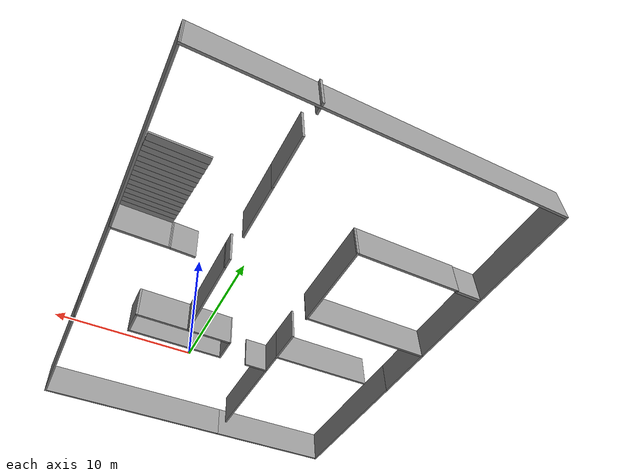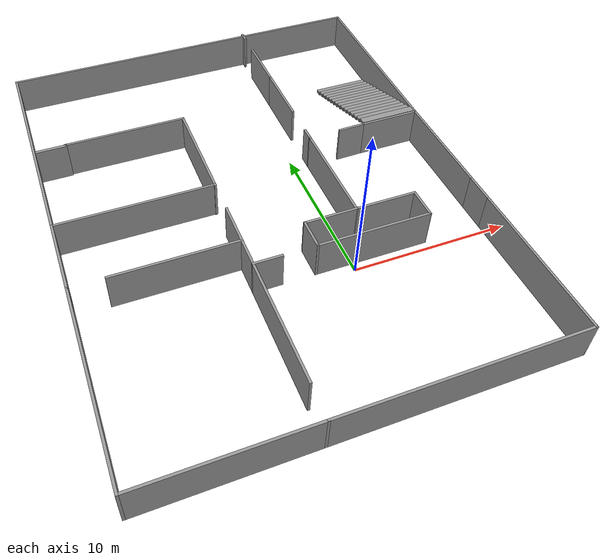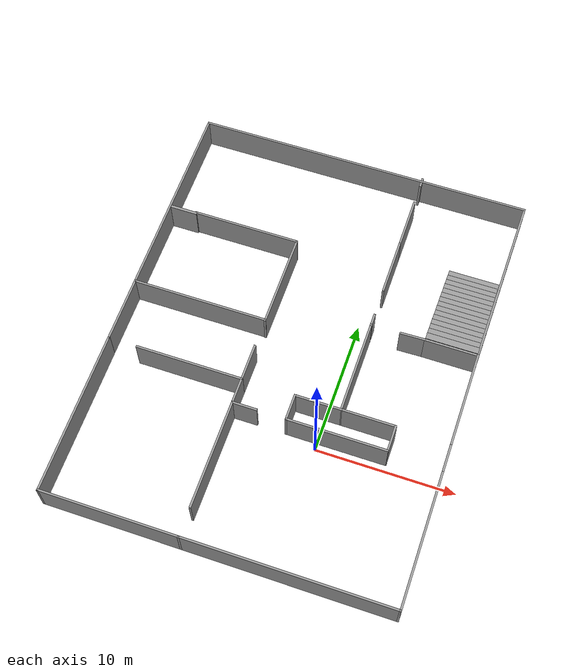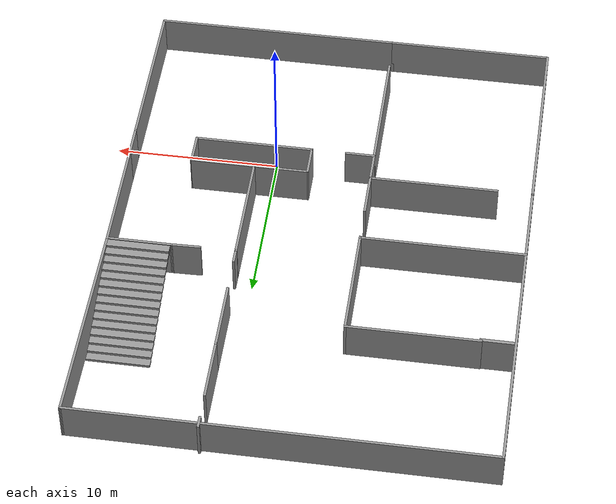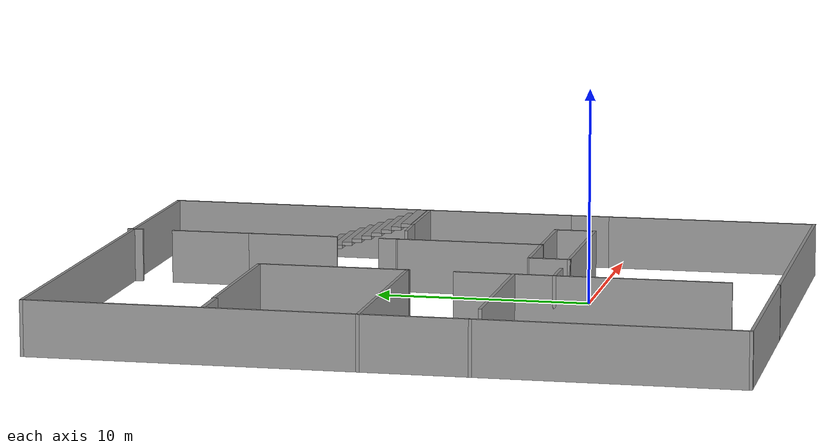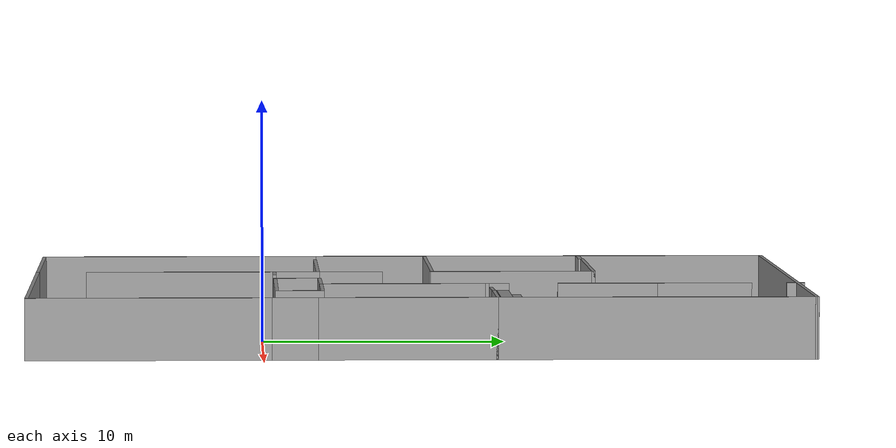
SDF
<?xml version='1.0'?>
<sdf version='1.6'>
  <model name='mybuilding'>
    <pose frame=''>-3.53637 6.43428 0 0 -0 0</pose>
    <link name='Door_0'>
      <collision name='Door_0_Collision'>
        <geometry>
          <box>
            <size>2.008 0.2 2.5</size>
          </box>
        </geometry>
        <pose frame=''>0 0 1.25 0 -0 0</pose>
      </collision>
      <visual name='Door_0_Visual'>
        <pose frame=''>0 0 1.25 0 -0 0</pose>
        <geometry>
          <box>
            <size>2.008 0.2 2.5</size>
          </box>
        </geometry>
        <material>
          <script>
            <uri>file://media/materials/scripts/gazebo.material</uri>
            <name>Gazebo/Grey</name>
          </script>
        </material>
      </visual>
      <pose frame=''>-11.3308 7.59577 0 0 -0 0</pose>
    </link>
    <link name='Stairs_5'>
      <visual name='Stairs_5_Visual_0'>
        <pose frame=''>10.3463 10.0552 0.083333 0 -0 0</pose>
        <geometry>
          <box>
            <size>3.78213 0.484429 0.166667</size>
          </box>
        </geometry>
        <material>
          <script>
            <uri>file://media/materials/scripts/gazebo.material</uri>
            <name>Gazebo/Grey</name>
          </script>
          <ambient>1 1 1 1</ambient>
        </material>
      </visual>
      <collision name='Stairs_5_Collision_0'>
        <geometry>
          <box>
            <size>3.78213 0.484429 0.166667</size>
          </box>
        </geometry>
        <pose frame=''>10.3463 10.0552 0.083333 0 -0 0</pose>
      </collision>
      <visual name='Stairs_5_Visual_1'>
        <pose frame=''>10.3463 9.57073 0.25 0 -0 0</pose>
        <geometry>
          <box>
            <size>3.78213 0.484429 0.166667</size>
          </box>
        </geometry>
        <material>
          <script>
            <uri>file://media/materials/scripts/gazebo.material</uri>
            <name>Gazebo/Grey</name>
          </script>
          <ambient>1 1 1 1</ambient>
        </material>
      </visual>
      <collision name='Stairs_5_Collision_1'>
        <geometry>
          <box>
            <size>3.78213 0.484429 0.166667</size>
          </box>
        </geometry>
        <pose frame=''>10.3463 9.57073 0.25 0 -0 0</pose>
      </collision>
      <visual name='Stairs_5_Visual_2'>
        <pose frame=''>10.3463 9.0863 0.416667 0 -0 0</pose>
        <geometry>
          <box>
            <size>3.78213 0.484429 0.166667</size>
          </box>
        </geometry>
        <material>
          <script>
            <uri>file://media/materials/scripts/gazebo.material</uri>
            <name>Gazebo/Grey</name>
          </script>
          <ambient>1 1 1 1</ambient>
        </material>
      </visual>
      <collision name='Stairs_5_Collision_2'>
        <geometry>
          <box>
            <size>3.78213 0.484429 0.166667</size>
          </box>
        </geometry>
        <pose frame=''>10.3463 9.0863 0.416667 0 -0 0</pose>
      </collision>
      <visual name='Stairs_5_Visual_3'>
        <pose frame=''>10.3463 8.60187 0.583333 0 -0 0</pose>
        <geometry>
          <box>
            <size>3.78213 0.484429 0.166667</size>
          </box>
        </geometry>
        <material>
          <script>
            <uri>file://media/materials/scripts/gazebo.material</uri>
            <name>Gazebo/Grey</name>
          </script>
          <ambient>1 1 1 1</ambient>
        </material>
      </visual>
      <collision name='Stairs_5_Collision_3'>
        <geometry>
          <box>
            <size>3.78213 0.484429 0.166667</size>
          </box>
        </geometry>
        <pose frame=''>10.3463 8.60187 0.583333 0 -0 0</pose>
      </collision>
      <visual name='Stairs_5_Visual_4'>
        <pose frame=''>10.3463 8.11744 0.75 0 -0 0</pose>
        <geometry>
          <box>
            <size>3.78213 0.484429 0.166667</size>
          </box>
        </geometry>
        <material>
          <script>
            <uri>file://media/materials/scripts/gazebo.material</uri>
            <name>Gazebo/Grey</name>
          </script>
          <ambient>1 1 1 1</ambient>
        </material>
      </visual>
      <collision name='Stairs_5_Collision_4'>
        <geometry>
          <box>
            <size>3.78213 0.484429 0.166667</size>
          </box>
        </geometry>
        <pose frame=''>10.3463 8.11744 0.75 0 -0 0</pose>
      </collision>
      <visual name='Stairs_5_Visual_5'>
        <pose frame=''>10.3463 7.63301 0.916667 0 -0 0</pose>
        <geometry>
          <box>
            <size>3.78213 0.484429 0.166667</size>
          </box>
        </geometry>
        <material>
          <script>
            <uri>file://media/materials/scripts/gazebo.material</uri>
            <name>Gazebo/Grey</name>
          </script>
          <ambient>1 1 1 1</ambient>
        </material>
      </visual>
      <collision name='Stairs_5_Collision_5'>
        <geometry>
          <box>
            <size>3.78213 0.484429 0.166667</size>
          </box>
        </geometry>
        <pose frame=''>10.3463 7.63301 0.916667 0 -0 0</pose>
      </collision>
      <visual name='Stairs_5_Visual_6'>
        <pose frame=''>10.3463 7.14858 1.08333 0 -0 0</pose>
        <geometry>
          <box>
            <size>3.78213 0.484429 0.166667</size>
          </box>
        </geometry>
        <material>
          <script>
            <uri>file://media/materials/scripts/gazebo.material</uri>
            <name>Gazebo/Grey</name>
          </script>
          <ambient>1 1 1 1</ambient>
        </material>
      </visual>
      <collision name='Stairs_5_Collision_6'>
        <geometry>
          <box>
            <size>3.78213 0.484429 0.166667</size>
          </box>
        </geometry>
        <pose frame=''>10.3463 7.14858 1.08333 0 -0 0</pose>
      </collision>
      <visual name='Stairs_5_Visual_7'>
        <pose frame=''>10.3463 6.66415 1.25 0 -0 0</pose>
        <geometry>
          <box>
            <size>3.78213 0.484429 0.166667</size>
          </box>
        </geometry>
        <material>
          <script>
            <uri>file://media/materials/scripts/gazebo.material</uri>
            <name>Gazebo/Grey</name>
          </script>
          <ambient>1 1 1 1</ambient>
        </material>
      </visual>
      <collision name='Stairs_5_Collision_7'>
        <geometry>
          <box>
            <size>3.78213 0.484429 0.166667</size>
          </box>
        </geometry>
        <pose frame=''>10.3463 6.66415 1.25 0 -0 0</pose>
      </collision>
      <visual name='Stairs_5_Visual_8'>
        <pose frame=''>10.3463 6.17973 1.41667 0 -0 0</pose>
        <geometry>
          <box>
            <size>3.78213 0.484429 0.166667</size>
          </box>
        </geometry>
        <material>
          <script>
            <uri>file://media/materials/scripts/gazebo.material</uri>
            <name>Gazebo/Grey</name>
          </script>
          <ambient>1 1 1 1</ambient>
        </material>
      </visual>
      <collision name='Stairs_5_Collision_8'>
        <geometry>
          <box>
            <size>3.78213 0.484429 0.166667</size>
          </box>
        </geometry>
        <pose frame=''>10.3463 6.17973 1.41667 0 -0 0</pose>
      </collision>
      <visual name='Stairs_5_Visual_9'>
        <pose frame=''>10.3463 5.69529 1.58333 0 -0 0</pose>
        <geometry>
          <box>
            <size>3.78213 0.484429 0.166667</size>
          </box>
        </geometry>
        <material>
          <script>
            <uri>file://media/materials/scripts/gazebo.material</uri>
            <name>Gazebo/Grey</name>
          </script>
          <ambient>1 1 1 1</ambient>
        </material>
      </visual>
      <collision name='Stairs_5_Collision_9'>
        <geometry>
          <box>
            <size>3.78213 0.484429 0.166667</size>
          </box>
        </geometry>
        <pose frame=''>10.3463 5.69529 1.58333 0 -0 0</pose>
      </collision>
      <visual name='Stairs_5_Visual_10'>
        <pose frame=''>10.3463 5.21087 1.75 0 -0 0</pose>
        <geometry>
          <box>
            <size>3.78213 0.484429 0.166667</size>
          </box>
        </geometry>
        <material>
          <script>
            <uri>file://media/materials/scripts/gazebo.material</uri>
            <name>Gazebo/Grey</name>
          </script>
          <ambient>1 1 1 1</ambient>
        </material>
      </visual>
      <collision name='Stairs_5_Collision_10'>
        <geometry>
          <box>
            <size>3.78213 0.484429 0.166667</size>
          </box>
        </geometry>
        <pose frame=''>10.3463 5.21087 1.75 0 -0 0</pose>
      </collision>
      <visual name='Stairs_5_Visual_11'>
        <pose frame=''>10.3463 4.72644 1.91667 0 -0 0</pose>
        <geometry>
          <box>
            <size>3.78213 0.484429 0.166667</size>
          </box>
        </geometry>
        <material>
          <script>
            <uri>file://media/materials/scripts/gazebo.material</uri>
            <name>Gazebo/Grey</name>
          </script>
          <ambient>1 1 1 1</ambient>
        </material>
      </visual>
      <collision name='Stairs_5_Collision_11'>
        <geometry>
          <box>
            <size>3.78213 0.484429 0.166667</size>
          </box>
        </geometry>
        <pose frame=''>10.3463 4.72644 1.91667 0 -0 0</pose>
      </collision>
      <visual name='Stairs_5_Visual_12'>
        <pose frame=''>10.3463 4.24201 2.08333 0 -0 0</pose>
        <geometry>
          <box>
            <size>3.78213 0.484429 0.166667</size>
          </box>
        </geometry>
        <material>
          <script>
            <uri>file://media/materials/scripts/gazebo.material</uri>
            <name>Gazebo/Grey</name>
          </script>
          <ambient>1 1 1 1</ambient>
        </material>
      </visual>
      <collision name='Stairs_5_Collision_12'>
        <geometry>
          <box>
            <size>3.78213 0.484429 0.166667</size>
          </box>
        </geometry>
        <pose frame=''>10.3463 4.24201 2.08333 0 -0 0</pose>
      </collision>
      <visual name='Stairs_5_Visual_13'>
        <pose frame=''>10.3463 3.75758 2.25 0 -0 0</pose>
        <geometry>
          <box>
            <size>3.78213 0.484429 0.166667</size>
          </box>
        </geometry>
        <material>
          <script>
            <uri>file://media/materials/scripts/gazebo.material</uri>
            <name>Gazebo/Grey</name>
          </script>
          <ambient>1 1 1 1</ambient>
        </material>
      </visual>
      <collision name='Stairs_5_Collision_13'>
        <geometry>
          <box>
            <size>3.78213 0.484429 0.166667</size>
          </box>
        </geometry>
        <pose frame=''>10.3463 3.75758 2.25 0 -0 0</pose>
      </collision>
      <visual name='Stairs_5_Visual_14'>
        <pose frame=''>10.3463 3.27315 2.41667 0 -0 0</pose>
        <geometry>
          <box>
            <size>3.78213 0.484429 0.166667</size>
          </box>
        </geometry>
        <material>
          <script>
            <uri>file://media/materials/scripts/gazebo.material</uri>
            <name>Gazebo/Grey</name>
          </script>
          <ambient>1 1 1 1</ambient>
        </material>
      </visual>
      <collision name='Stairs_5_Collision_14'>
        <geometry>
          <box>
            <size>3.78213 0.484429 0.166667</size>
          </box>
        </geometry>
        <pose frame=''>10.3463 3.27315 2.41667 0 -0 0</pose>
      </collision>
    </link>
    <link name='Wall_1'>
      <pose frame=''>-7.50044 -4.03002 0 0 -0 0</pose>
      <visual name='Wall_1_Visual_0'>
        <pose frame=''>-4.93073 0 1.25 0 -0 0</pose>
        <geometry>
          <box>
            <size>0.138548 0.15 2.5</size>
          </box>
        </geometry>
        <material>
          <script>
            <uri>file://media/materials/scripts/gazebo.material</uri>
            <name>Gazebo/Grey</name>
          </script>
          <ambient>1 1 1 1</ambient>
        </material>
      </visual>
      <collision name='Wall_1_Collision_0'>
        <geometry>
          <box>
            <size>0.138548 0.15 2.5</size>
          </box>
        </geometry>
        <pose frame=''>-4.93073 0 1.25 0 -0 0</pose>
      </collision>
      <visual name='Wall_1_Visual_1'>
        <pose frame=''>1.06927 0 1.25 0 -0 0</pose>
        <geometry>
          <box>
            <size>7.86145 0.15 2.5</size>
          </box>
        </geometry>
        <material>
          <script>
            <uri>file://media/materials/scripts/gazebo.material</uri>
            <name>Gazebo/Grey</name>
          </script>
          <ambient>1 1 1 1</ambient>
        </material>
      </visual>
      <collision name='Wall_1_Collision_1'>
        <geometry>
          <box>
            <size>7.86145 0.15 2.5</size>
          </box>
        </geometry>
        <pose frame=''>1.06927 0 1.25 0 -0 0</pose>
      </collision>
    </link>
    <link name='Wall_11'>
      <collision name='Wall_11_Collision'>
        <geometry>
          <box>
            <size>2 0.15 2.5</size>
          </box>
        </geometry>
        <pose frame=''>0 0 1.25 0 -0 0</pose>
      </collision>
      <visual name='Wall_11_Visual'>
        <pose frame=''>0 0 1.25 0 -0 0</pose>
        <geometry>
          <box>
            <size>2 0.15 2.5</size>
          </box>
        </geometry>
        <material>
          <script>
            <uri>file://media/materials/scripts/gazebo.material</uri>
            <name>Gazebo/Grey</name>
          </script>
          <ambient>1 1 1 1</ambient>
        </material>
      </visual>
      <pose frame=''>1.27456 -4.95502 0 0 0 -1.5708</pose>
    </link>
    <link name='Wall_12'>
      <collision name='Wall_12_Collision'>
        <geometry>
          <box>
            <size>7.25 0.15 2.5</size>
          </box>
        </geometry>
        <pose frame=''>0 0 1.25 0 -0 0</pose>
      </collision>
      <visual name='Wall_12_Visual'>
        <pose frame=''>0 0 1.25 0 -0 0</pose>
        <geometry>
          <box>
            <size>7.25 0.15 2.5</size>
          </box>
        </geometry>
        <material>
          <script>
            <uri>file://media/materials/scripts/gazebo.material</uri>
            <name>Gazebo/Grey</name>
          </script>
          <ambient>1 1 1 1</ambient>
        </material>
      </visual>
      <pose frame=''>4.82456 -5.88002 0 0 -0 0</pose>
    </link>
    <link name='Wall_14'>
      <collision name='Wall_14_Collision'>
        <geometry>
          <box>
            <size>4 0.15 2.5</size>
          </box>
        </geometry>
        <pose frame=''>0 0 1.25 0 -0 0</pose>
      </collision>
      <visual name='Wall_14_Visual'>
        <pose frame=''>0 0 1.25 0 -0 0</pose>
        <geometry>
          <box>
            <size>4 0.15 2.5</size>
          </box>
        </geometry>
        <material>
          <script>
            <uri>file://media/materials/scripts/gazebo.material</uri>
            <name>Gazebo/Grey</name>
          </script>
          <ambient>1 1 1 1</ambient>
        </material>
      </visual>
      <pose frame=''>6.48732 -4.01998 0 0 -0 3.14159</pose>
    </link>
    <link name='Wall_15'>
      <collision name='Wall_15_Collision'>
        <geometry>
          <box>
            <size>7 0.15 2.5</size>
          </box>
        </geometry>
        <pose frame=''>0 0 1.25 0 -0 0</pose>
      </collision>
      <visual name='Wall_15_Visual'>
        <pose frame=''>0 0 1.25 0 -0 0</pose>
        <geometry>
          <box>
            <size>7 0.15 2.5</size>
          </box>
        </geometry>
        <material>
          <script>
            <uri>file://media/materials/scripts/gazebo.material</uri>
            <name>Gazebo/Grey</name>
          </script>
          <ambient>1 1 1 1</ambient>
        </material>
      </visual>
      <pose frame=''>4.56232 -0.594982 0 0 -0 1.5708</pose>
    </link>
    <link name='Wall_2'>
      <pose frame=''>-2.57544 -9.95502 0 0 0 -1.5708</pose>
      <visual name='Wall_2_Visual_0'>
        <pose frame=''>-1.05935 0 1.25 0 -0 0</pose>
        <geometry>
          <box>
            <size>9.88129 0.15 2.5</size>
          </box>
        </geometry>
        <material>
          <script>
            <uri>file://media/materials/scripts/gazebo.material</uri>
            <name>Gazebo/Grey</name>
          </script>
          <ambient>1 1 1 1</ambient>
        </material>
      </visual>
      <collision name='Wall_2_Collision_0'>
        <geometry>
          <box>
            <size>9.88129 0.15 2.5</size>
          </box>
        </geometry>
        <pose frame=''>-1.05935 0 1.25 0 -0 0</pose>
      </collision>
      <visual name='Wall_2_Visual_1'>
        <pose frame=''>5.94065 0 1.25 0 -0 0</pose>
        <geometry>
          <box>
            <size>0.118708 0.15 2.5</size>
          </box>
        </geometry>
        <material>
          <script>
            <uri>file://media/materials/scripts/gazebo.material</uri>
            <name>Gazebo/Grey</name>
          </script>
          <ambient>1 1 1 1</ambient>
        </material>
      </visual>
      <collision name='Wall_2_Collision_1'>
        <geometry>
          <box>
            <size>0.118708 0.15 2.5</size>
          </box>
        </geometry>
        <pose frame=''>5.94065 0 1.25 0 -0 0</pose>
      </collision>
    </link>
    <link name='Wall_29'>
      <collision name='Wall_29_Collision'>
        <geometry>
          <box>
            <size>7.25 0.15 2.5</size>
          </box>
        </geometry>
        <pose frame=''>0 0 1.25 0 -0 0</pose>
      </collision>
      <visual name='Wall_29_Visual'>
        <pose frame=''>0 0 1.25 0 -0 0</pose>
        <geometry>
          <box>
            <size>7.25 0.15 2.5</size>
          </box>
        </geometry>
        <material>
          <script>
            <uri>file://media/materials/scripts/gazebo.material</uri>
            <name>Gazebo/Grey</name>
          </script>
          <ambient>1 1 1 1</ambient>
        </material>
      </visual>
      <pose frame=''>12.2746 -0.630016 0 0 -0 1.5708</pose>
    </link>
    <link name='Wall_3'>
      <collision name='Wall_3_Collision'>
        <geometry>
          <box>
            <size>15 0.15 2.5</size>
          </box>
        </geometry>
        <pose frame=''>0 0 1.25 0 -0 0</pose>
      </collision>
      <visual name='Wall_3_Visual'>
        <pose frame=''>0 0 1.25 0 -0 0</pose>
        <geometry>
          <box>
            <size>15 0.15 2.5</size>
          </box>
        </geometry>
        <material>
          <script>
            <uri>file://media/materials/scripts/gazebo.material</uri>
            <name>Gazebo/Grey</name>
          </script>
          <ambient>1 1 1 1</ambient>
        </material>
      </visual>
      <pose frame=''>4.84956 -15.88 0 0 -0 0</pose>
    </link>
    <link name='Wall_31'>
      <collision name='Wall_31_Collision'>
        <geometry>
          <box>
            <size>4 0.15 2.5</size>
          </box>
        </geometry>
        <pose frame=''>0 0 1.25 0 -0 0</pose>
      </collision>
      <visual name='Wall_31_Visual'>
        <pose frame=''>0 0 1.25 0 -0 0</pose>
        <geometry>
          <box>
            <size>4 0.15 2.5</size>
          </box>
        </geometry>
        <material>
          <script>
            <uri>file://media/materials/scripts/gazebo.material</uri>
            <name>Gazebo/Grey</name>
          </script>
          <ambient>1 1 1 1</ambient>
        </material>
      </visual>
      <pose frame=''>10.3496 2.91998 0 0 -0 3.14159</pose>
    </link>
    <link name='Wall_33'>
      <collision name='Wall_33_Collision'>
        <geometry>
          <box>
            <size>3.43777 0.15 2.5</size>
          </box>
        </geometry>
        <pose frame=''>0 0 1.25 0 -0 0</pose>
      </collision>
      <visual name='Wall_33_Visual'>
        <pose frame=''>0 0 1.25 0 -0 0</pose>
        <geometry>
          <box>
            <size>3.43777 0.15 2.5</size>
          </box>
        </geometry>
        <material>
          <script>
            <uri>file://media/materials/scripts/gazebo.material</uri>
            <name>Gazebo/Grey</name>
          </script>
          <ambient>1 1 1 1</ambient>
        </material>
      </visual>
      <pose frame=''>2.91844 -4.025 0 0 -0 0.003052</pose>
    </link>
    <link name='Wall_35'>
      <collision name='Wall_35_Collision'>
        <geometry>
          <box>
            <size>5 0.15 2.5</size>
          </box>
        </geometry>
        <pose frame=''>0 0 1.25 0 -0 0</pose>
      </collision>
      <visual name='Wall_35_Visual'>
        <pose frame=''>0 0 1.25 0 -0 0</pose>
        <geometry>
          <box>
            <size>5 0.15 2.5</size>
          </box>
        </geometry>
        <material>
          <script>
            <uri>file://media/materials/scripts/gazebo.material</uri>
            <name>Gazebo/Grey</name>
          </script>
          <ambient>1 1 1 1</ambient>
        </material>
      </visual>
      <pose frame=''>-12.4254 -1.60502 0 0 -0 1.5708</pose>
    </link>
    <link name='Wall_37'>
      <collision name='Wall_37_Collision'>
        <geometry>
          <box>
            <size>15 0.15 2.5</size>
          </box>
        </geometry>
        <pose frame=''>0 0 1.25 0 -0 0</pose>
      </collision>
      <visual name='Wall_37_Visual'>
        <pose frame=''>0 0 1.25 0 -0 0</pose>
        <geometry>
          <box>
            <size>15 0.15 2.5</size>
          </box>
        </geometry>
        <material>
          <script>
            <uri>file://media/materials/scripts/gazebo.material</uri>
            <name>Gazebo/Grey</name>
          </script>
          <ambient>1 1 1 1</ambient>
        </material>
      </visual>
      <pose frame=''>-12.4254 8.24498 0 0 -0 1.5708</pose>
    </link>
    <link name='Wall_39'>
      <collision name='Wall_39_Collision'>
        <geometry>
          <box>
            <size>25 0.15 2.5</size>
          </box>
        </geometry>
        <pose frame=''>0 0 1.25 0 -0 0</pose>
      </collision>
      <visual name='Wall_39_Visual'>
        <pose frame=''>0 0 1.25 0 -0 0</pose>
        <geometry>
          <box>
            <size>25 0.15 2.5</size>
          </box>
        </geometry>
        <material>
          <script>
            <uri>file://media/materials/scripts/gazebo.material</uri>
            <name>Gazebo/Grey</name>
          </script>
          <ambient>1 1 1 1</ambient>
        </material>
      </visual>
      <pose frame=''>-0.000437 15.67 0 0 -0 0</pose>
    </link>
    <link name='Wall_4'>
      <collision name='Wall_4_Collision'>
        <geometry>
          <box>
            <size>10 0.15 2.5</size>
          </box>
        </geometry>
        <pose frame=''>0 0 1.25 0 -0 0</pose>
      </collision>
      <visual name='Wall_4_Visual'>
        <pose frame=''>0 0 1.25 0 -0 0</pose>
        <geometry>
          <box>
            <size>10 0.15 2.5</size>
          </box>
        </geometry>
        <material>
          <script>
            <uri>file://media/materials/scripts/gazebo.material</uri>
            <name>Gazebo/Grey</name>
          </script>
          <ambient>1 1 1 1</ambient>
        </material>
      </visual>
      <pose frame=''>12.2746 -10.955 0 0 -0 1.5708</pose>
    </link>
    <link name='Wall_41'>
      <collision name='Wall_41_Collision'>
        <geometry>
          <box>
            <size>12.9009 0.15 2.5</size>
          </box>
        </geometry>
        <pose frame=''>0 0 1.25 0 -0 0</pose>
      </collision>
      <visual name='Wall_41_Visual'>
        <pose frame=''>0 0 1.25 0 -0 0</pose>
        <geometry>
          <box>
            <size>12.9009 0.15 2.5</size>
          </box>
        </geometry>
        <material>
          <script>
            <uri>file://media/materials/scripts/gazebo.material</uri>
            <name>Gazebo/Grey</name>
          </script>
          <ambient>1 1 1 1</ambient>
        </material>
      </visual>
      <pose frame=''>12.3496 9.29498 0 0 0 -1.58256</pose>
    </link>
    <link name='Wall_48'>
      <collision name='Wall_48_Collision'>
        <geometry>
          <box>
            <size>10 0.15 2.5</size>
          </box>
        </geometry>
        <pose frame=''>0 0 1.25 0 -0 0</pose>
      </collision>
      <visual name='Wall_48_Visual'>
        <pose frame=''>0 0 1.25 0 -0 0</pose>
        <geometry>
          <box>
            <size>10 0.15 2.5</size>
          </box>
        </geometry>
        <material>
          <script>
            <uri>file://media/materials/scripts/gazebo.material</uri>
            <name>Gazebo/Grey</name>
          </script>
          <ambient>1 1 1 1</ambient>
        </material>
      </visual>
      <pose frame=''>-7.50044 0.819983 0 0 -0 0</pose>
    </link>
    <link name='Wall_5'>
      <collision name='Wall_5_Collision'>
        <geometry>
          <box>
            <size>2 0.15 2.5</size>
          </box>
        </geometry>
        <pose frame=''>0 0 1.25 0 -0 0</pose>
      </collision>
      <visual name='Wall_5_Visual'>
        <pose frame=''>0 0 1.25 0 -0 0</pose>
        <geometry>
          <box>
            <size>2 0.15 2.5</size>
          </box>
        </geometry>
        <material>
          <script>
            <uri>file://media/materials/scripts/gazebo.material</uri>
            <name>Gazebo/Grey</name>
          </script>
          <ambient>1 1 1 1</ambient>
        </material>
      </visual>
      <pose frame=''>12.2746 -5.10502 0 0 -0 1.5708</pose>
    </link>
    <link name='Wall_50'>
      <collision name='Wall_50_Collision'>
        <geometry>
          <box>
            <size>7 0.15 2.5</size>
          </box>
        </geometry>
        <pose frame=''>0 0 1.25 0 -0 0</pose>
      </collision>
      <visual name='Wall_50_Visual'>
        <pose frame=''>0 0 1.25 0 -0 0</pose>
        <geometry>
          <box>
            <size>7 0.15 2.5</size>
          </box>
        </geometry>
        <material>
          <script>
            <uri>file://media/materials/scripts/gazebo.material</uri>
            <name>Gazebo/Grey</name>
          </script>
          <ambient>1 1 1 1</ambient>
        </material>
      </visual>
      <pose frame=''>-2.57544 4.24498 0 0 -0 1.5708</pose>
    </link>
    <link name='Wall_52'>
      <collision name='Wall_52_Collision'>
        <geometry>
          <box>
            <size>8 0.15 2.5</size>
          </box>
        </geometry>
        <pose frame=''>0 0 1.25 0 -0 0</pose>
      </collision>
      <visual name='Wall_52_Visual'>
        <pose frame=''>0 0 1.25 0 -0 0</pose>
        <geometry>
          <box>
            <size>8 0.15 2.5</size>
          </box>
        </geometry>
        <material>
          <script>
            <uri>file://media/materials/scripts/gazebo.material</uri>
            <name>Gazebo/Grey</name>
          </script>
          <ambient>1 1 1 1</ambient>
        </material>
      </visual>
      <pose frame=''>-6.50044 7.66998 0 0 -0 3.14159</pose>
    </link>
    <link name='Wall_54'>
      <collision name='Wall_54_Collision'>
        <geometry>
          <box>
            <size>12 0.15 2.5</size>
          </box>
        </geometry>
        <pose frame=''>0 0 1.25 0 -0 0</pose>
      </collision>
      <visual name='Wall_54_Visual'>
        <pose frame=''>0 0 1.25 0 -0 0</pose>
        <geometry>
          <box>
            <size>12 0.15 2.5</size>
          </box>
        </geometry>
        <material>
          <script>
            <uri>file://media/materials/scripts/gazebo.material</uri>
            <name>Gazebo/Grey</name>
          </script>
          <ambient>1 1 1 1</ambient>
        </material>
      </visual>
      <pose frame=''>-12.4254 -9.95502 0 0 0 -1.5708</pose>
    </link>
    <link name='Wall_55'>
      <collision name='Wall_55_Collision'>
        <geometry>
          <box>
            <size>10 0.15 2.5</size>
          </box>
        </geometry>
        <pose frame=''>0 0 1.25 0 -0 0</pose>
      </collision>
      <visual name='Wall_55_Visual'>
        <pose frame=''>0 0 1.25 0 -0 0</pose>
        <geometry>
          <box>
            <size>10 0.15 2.5</size>
          </box>
        </geometry>
        <material>
          <script>
            <uri>file://media/materials/scripts/gazebo.material</uri>
            <name>Gazebo/Grey</name>
          </script>
          <ambient>1 1 1 1</ambient>
        </material>
      </visual>
      <pose frame=''>-7.50044 -15.88 0 0 -0 0</pose>
    </link>
    <link name='Wall_57'>
      <pose frame=''>4.56232 6.38002 0 0 -0 1.5708</pose>
      <visual name='Wall_57_Visual_0'>
        <pose frame=''>-3.1359 0 1.25 0 -0 0</pose>
        <geometry>
          <box>
            <size>0.978197 0.15 2.5</size>
          </box>
        </geometry>
        <material>
          <script>
            <uri>file://media/materials/scripts/gazebo.material</uri>
            <name>Gazebo/Grey</name>
          </script>
          <ambient>1 1 1 1</ambient>
        </material>
      </visual>
      <collision name='Wall_57_Collision_0'>
        <geometry>
          <box>
            <size>0.978197 0.15 2.5</size>
          </box>
        </geometry>
        <pose frame=''>-3.1359 0 1.25 0 -0 0</pose>
      </collision>
      <visual name='Wall_57_Visual_1'>
        <pose frame=''>1.4891 0 1.25 0 -0 0</pose>
        <geometry>
          <box>
            <size>4.2718 0.15 2.5</size>
          </box>
        </geometry>
        <material>
          <script>
            <uri>file://media/materials/scripts/gazebo.material</uri>
            <name>Gazebo/Grey</name>
          </script>
          <ambient>1 1 1 1</ambient>
        </material>
      </visual>
      <collision name='Wall_57_Collision_1'>
        <geometry>
          <box>
            <size>4.2718 0.15 2.5</size>
          </box>
        </geometry>
        <pose frame=''>1.4891 0 1.25 0 -0 0</pose>
      </collision>
    </link>
    <link name='Wall_59'>
      <pose frame=''>-2.57544 -1.60502 0 0 0 -1.5708</pose>
      <visual name='Wall_59_Visual_0'>
        <pose frame=''>-2.40644 0 1.25 0 -0 0</pose>
        <geometry>
          <box>
            <size>0.18712 0.15 2.5</size>
          </box>
        </geometry>
        <material>
          <script>
            <uri>file://media/materials/scripts/gazebo.material</uri>
            <name>Gazebo/Grey</name>
          </script>
          <ambient>1 1 1 1</ambient>
        </material>
      </visual>
      <collision name='Wall_59_Collision_0'>
        <geometry>
          <box>
            <size>0.18712 0.15 2.5</size>
          </box>
        </geometry>
        <pose frame=''>-2.40644 0 1.25 0 -0 0</pose>
      </collision>
      <visual name='Wall_59_Visual_1'>
        <pose frame=''>1.09356 0 1.25 0 -0 0</pose>
        <geometry>
          <box>
            <size>2.81288 0.15 2.5</size>
          </box>
        </geometry>
        <material>
          <script>
            <uri>file://media/materials/scripts/gazebo.material</uri>
            <name>Gazebo/Grey</name>
          </script>
          <ambient>1 1 1 1</ambient>
        </material>
      </visual>
      <collision name='Wall_59_Collision_1'>
        <geometry>
          <box>
            <size>2.81288 0.15 2.5</size>
          </box>
        </geometry>
        <pose frame=''>1.09356 0 1.25 0 -0 0</pose>
      </collision>
    </link>
    <link name='Wall_61'>
      <pose frame=''>-0.650437 -5.88002 0 0 -0 3.14159</pose>
      <visual name='Wall_61_Visual_0'>
        <pose frame=''>-1.92902 0 1.25 0 -0 0</pose>
        <geometry>
          <box>
            <size>0.141968 0.15 2.5</size>
          </box>
        </geometry>
        <material>
          <script>
            <uri>file://media/materials/scripts/gazebo.material</uri>
            <name>Gazebo/Grey</name>
          </script>
          <ambient>1 1 1 1</ambient>
        </material>
      </visual>
      <collision name='Wall_61_Collision_0'>
        <geometry>
          <box>
            <size>0.141968 0.15 2.5</size>
          </box>
        </geometry>
        <pose frame=''>-1.92902 0 1.25 0 -0 0</pose>
      </collision>
      <visual name='Wall_61_Visual_1'>
        <pose frame=''>1.07098 0 1.25 0 -0 0</pose>
        <geometry>
          <box>
            <size>1.85803 0.15 2.5</size>
          </box>
        </geometry>
        <material>
          <script>
            <uri>file://media/materials/scripts/gazebo.material</uri>
            <name>Gazebo/Grey</name>
          </script>
          <ambient>1 1 1 1</ambient>
        </material>
      </visual>
      <collision name='Wall_61_Collision_1'>
        <geometry>
          <box>
            <size>1.85803 0.15 2.5</size>
          </box>
        </geometry>
        <pose frame=''>1.07098 0 1.25 0 -0 0</pose>
      </collision>
    </link>
    <link name='Wall_63'>
      <pose frame=''>6.49344 2.875 0 0 0 -3.1183</pose>
      <visual name='Wall_63_Visual_0'>
        <pose frame=''>-1.07683 0 1.25 0 -0 0</pose>
        <geometry>
          <box>
            <size>1.85964 0.15 2.5</size>
          </box>
        </geometry>
        <material>
          <script>
            <uri>file://media/materials/scripts/gazebo.material</uri>
            <name>Gazebo/Grey</name>
          </script>
          <ambient>1 1 1 1</ambient>
        </material>
      </visual>
      <collision name='Wall_63_Collision_0'>
        <geometry>
          <box>
            <size>1.85964 0.15 2.5</size>
          </box>
        </geometry>
        <pose frame=''>-1.07683 0 1.25 0 -0 0</pose>
      </collision>
      <visual name='Wall_63_Visual_1'>
        <pose frame=''>1.92982 0 1.25 0 -0 0</pose>
        <geometry>
          <box>
            <size>0.153654 0.15 2.5</size>
          </box>
        </geometry>
        <material>
          <script>
            <uri>file://media/materials/scripts/gazebo.material</uri>
            <name>Gazebo/Grey</name>
          </script>
          <ambient>1 1 1 1</ambient>
        </material>
      </visual>
      <collision name='Wall_63_Collision_1'>
        <geometry>
          <box>
            <size>0.153654 0.15 2.5</size>
          </box>
        </geometry>
        <pose frame=''>1.92982 0 1.25 0 -0 0</pose>
      </collision>
    </link>
    <link name='Wall_65'>
      <pose frame=''>4.56232 12.605 0 0 -0 1.5708</pose>
      <visual name='Wall_65_Visual_0'>
        <pose frame=''>-0.800983 0 1.25 0 -0 0</pose>
        <geometry>
          <box>
            <size>3.89803 0.15 2.5</size>
          </box>
        </geometry>
        <material>
          <script>
            <uri>file://media/materials/scripts/gazebo.material</uri>
            <name>Gazebo/Grey</name>
          </script>
          <ambient>1 1 1 1</ambient>
        </material>
      </visual>
      <collision name='Wall_65_Collision_0'>
        <geometry>
          <box>
            <size>3.89803 0.15 2.5</size>
          </box>
        </geometry>
        <pose frame=''>-0.800983 0 1.25 0 -0 0</pose>
      </collision>
    </link>
    <link name='Wall_66'>
      <collision name='Wall_66_Collision'>
        <geometry>
          <box>
            <size>0.75 0.15 2.5</size>
          </box>
        </geometry>
        <pose frame=''>0 0 1.25 0 -0 0</pose>
      </collision>
      <visual name='Wall_66_Visual'>
        <pose frame=''>0 0 1.25 0 -0 0</pose>
        <geometry>
          <box>
            <size>0.75 0.15 2.5</size>
          </box>
        </geometry>
        <material>
          <script>
            <uri>file://media/materials/scripts/gazebo.material</uri>
            <name>Gazebo/Grey</name>
          </script>
          <ambient>1 1 1 1</ambient>
        </material>
      </visual>
      <pose frame=''>4.56232 15.58 0 0 -0 1.5708</pose>
    </link>
    <link name='Wall_8'>
      <collision name='Wall_8_Collision'>
        <geometry>
          <box>
            <size>2 0.15 2.5</size>
          </box>
        </geometry>
        <pose frame=''>0 0 1.25 0 -0 0</pose>
      </collision>
      <visual name='Wall_8_Visual'>
        <pose frame=''>0 0 1.25 0 -0 0</pose>
        <geometry>
          <box>
            <size>2 0.15 2.5</size>
          </box>
        </geometry>
        <material>
          <script>
            <uri>file://media/materials/scripts/gazebo.material</uri>
            <name>Gazebo/Grey</name>
          </script>
          <ambient>1 1 1 1</ambient>
        </material>
      </visual>
      <pose frame=''>8.41232 -4.94498 0 0 0 -1.5708</pose>
    </link>
    <static>1</static>
  </model>
</sdf>
